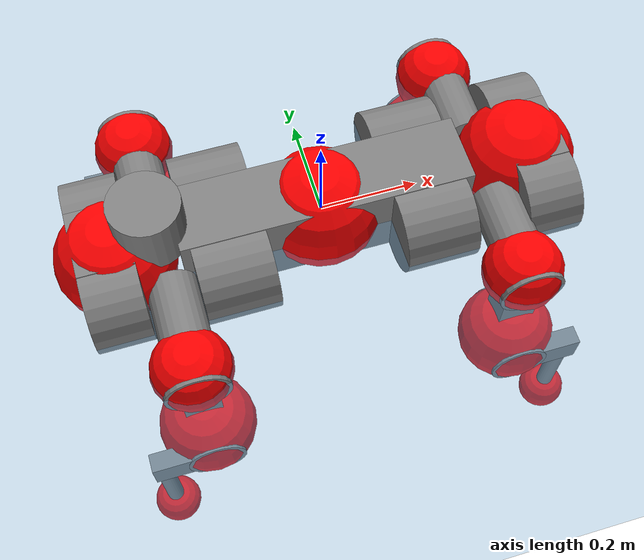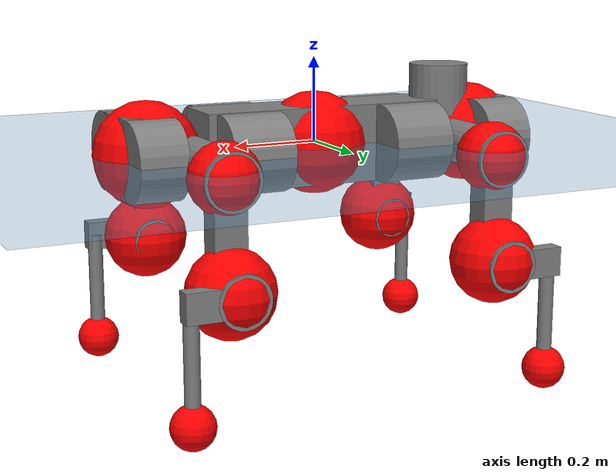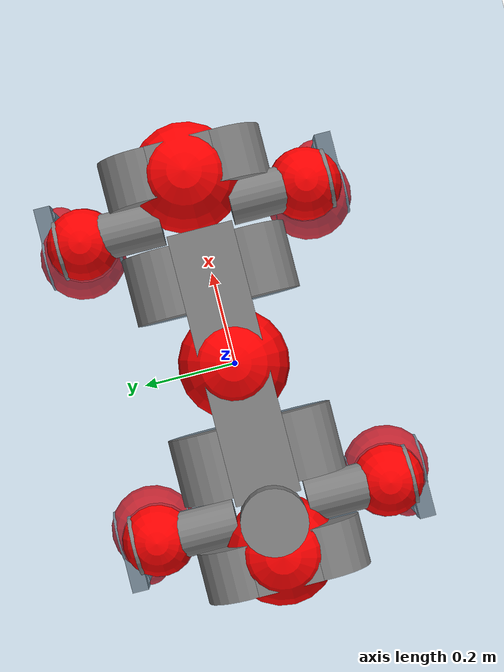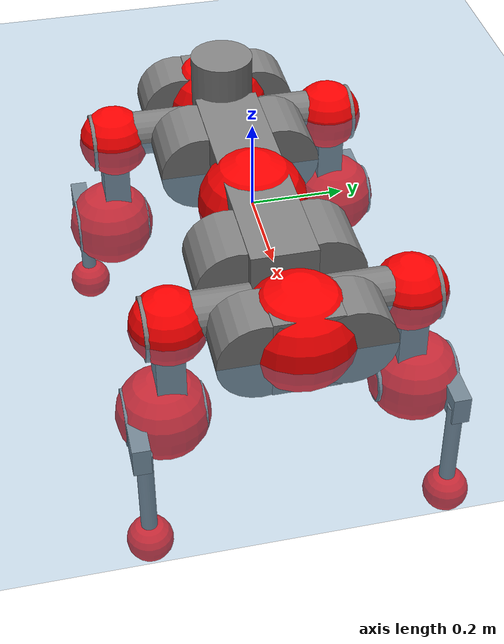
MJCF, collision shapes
<mujoco model="anymal_c">
  <compiler angle="radian" assetdir="assets" balanceinertia="true" inertiafromgeom="false"/>

  <option timestep="0.005" density="1.2" viscosity="2e-05"/>

  <size nkey="1"/>

  <visual>
    <quality shadowsize="8192"/>
    <map shadowclip="0.5"/>
  </visual>

  <default>
    <default class="/">
      <material specular="0" shininess="0.25"/>
      <geom contype="0" conaffinity="0" group="1" solref="-1000 -80"/>
      <site size="0.01 0.005 0.005" group="5"/>
      <general forcelimited="true" forcerange="-80 80" biastype="affine" gainprm="80" biasprm="0 -80 -2"/>
      <default class="anymal_c">
        <joint armature="0.01" damping="0.01" frictionloss="0.1"/>
        <default class="visual">
          <geom type="mesh" group="2"/>
          <default class="visual_zflip"/>
        </default>
        <default class="collision">
          <geom type="cylinder" group="3"/>
          <default class="foot">
            <geom size="0.03 0 0" type="sphere" condim="6" priority="1" friction="0.8 0.02 0.01" solimp="0.015 1 0.03"/>
          </default>
        </default>
      </default>
      <default class="reward_collision_sphere">
        <geom group="5" rgba="1 0 0 1"/>
      </default>
    </default>
  </default>

  <asset>
    <texture type="skybox" colorspace="auto" name="//unnamed_texture_0" builtin="gradient" rgb1="0.95 0.95 0.95" rgb2="0.95 0.95 0.95" width="100" height="600"/>
    <texture type="2d" colorspace="auto" name="texplane" builtin="checker" rgb1="0.345 0.575 0.748" rgb2="0.345 0.575 0.748" markrgb="1 1 1" width="512" height="512"/>
    <texture type="2d" colorspace="linear" name="base" file="base.png"/>
    <texture type="2d" colorspace="linear" name="top_shell" file="top_shell.png"/>
    <texture type="2d" colorspace="linear" name="bottom_shell" file="bottom_shell.png"/>
    <texture type="2d" colorspace="linear" name="remote" file="remote.png"/>
    <texture type="2d" colorspace="linear" name="hatch" file="hatch.png"/>
    <texture type="2d" colorspace="linear" name="handle" file="handle.png"/>
    <texture type="2d" colorspace="linear" name="face" file="face.png"/>
    <texture type="2d" colorspace="linear" name="battery" file="battery.png"/>
    <texture type="2d" colorspace="linear" name="lidar_cage" file="lidar_cage.png"/>
    <texture type="2d" colorspace="linear" name="depth_camera" file="depth_camera.png"/>
    <texture type="2d" colorspace="linear" name="wide_angle_camera" file="wide_angle_camera.png"/>
    <texture type="2d" colorspace="linear" name="lidar" file="lidar.png"/>
    <texture type="2d" colorspace="linear" name="drive" file="drive.png"/>
    <texture type="2d" colorspace="linear" name="hip_l" file="hip_l.png"/>
    <texture type="2d" colorspace="linear" name="shank_l" file="shank_l.png"/>
    <texture type="2d" colorspace="linear" name="foot" file="foot.png"/>
    <texture type="2d" colorspace="linear" name="thigh" file="thigh.png"/>
    <texture type="2d" colorspace="linear" name="shank_r" file="shank_r.png"/>
    <texture type="2d" colorspace="linear" name="hip_r" file="hip_r.png"/>
    <material name="MatPlane" class="/" texture="texplane" texuniform="true" texrepeat="2 2" specular="0.9" shininess="0.5"/>
    <material name="black_plastic" class="/" rgba="0.007 0.007 0.007 1"/>
    <material name="green" class="/" rgba="0.052 0.178 0.033 1"/>
    <material name="red" class="/" rgba="0.178 0.006 0.005 1"/>
    <material name="yellow" class="/" rgba="0.178 0.119 0.006 1"/>
    <material name="lwl" class="/" rgba="0.8 0.8 0.8 1"/>
    <material name="base" class="/" texture="base"/>
    <material name="top_shell" class="/" texture="top_shell"/>
    <material name="bottom_shell" class="/" texture="bottom_shell"/>
    <material name="hip_l" class="/" texture="hip_l"/>
    <material name="thigh" class="/" texture="thigh"/>
    <material name="shank_l" class="/" texture="shank_l"/>
    <material name="foot" class="/" texture="foot"/>
    <material name="hip_r" class="/" texture="hip_r"/>
    <material name="shank" class="/" texture="shank_r"/>
    <material name="hatch" class="/" texture="hatch"/>
    <material name="remote" class="/" texture="remote"/>
    <material name="handle" class="/" texture="handle"/>
    <material name="face" class="/" texture="face"/>
    <material name="depth_camera" class="/" texture="depth_camera"/>
    <material name="wide_angle_camera" class="/" texture="wide_angle_camera"/>
    <material name="battery" class="/" texture="battery"/>
    <material name="lidar_cage" class="/" texture="lidar_cage"/>
    <material name="lidar" class="/" texture="lidar"/>
    <material name="drive" class="/" texture="drive"/>
    <mesh name="base_0" class="/" file="base_0.obj"/>
    <mesh name="base_1" class="/" file="base_1.obj"/>
    <mesh name="base_2" class="/" file="base_2.obj"/>
    <mesh name="base_3" class="/" file="base_3.obj"/>
    <mesh name="base_4" class="/" file="base_4.obj"/>
    <mesh name="base_5" class="/" file="base_5.obj"/>
    <mesh name="top_shell" class="/" file="top_shell.obj"/>
    <mesh name="bottom_shell" class="/" file="bottom_shell.obj"/>
    <mesh name="remote" class="/" file="remote.obj"/>
    <mesh name="handle" class="/" file="handle.obj"/>
    <mesh name="face" class="/" file="face.obj"/>
    <mesh name="wide_angle_camera" class="/" file="wide_angle_camera.obj"/>
    <mesh name="depth_camera" class="/" file="depth_camera.obj"/>
    <mesh name="battery" class="/" file="battery.obj"/>
    <mesh name="lidar_cage" class="/" file="lidar_cage.obj"/>
    <mesh name="lidar" class="/" file="lidar.obj"/>
    <mesh name="drive" class="/" file="drive.obj"/>
    <mesh name="hip_l" class="/" file="hip_l.obj"/>
    <mesh name="thigh" class="/" file="thigh.obj"/>
    <mesh name="shank_l" class="/" file="shank_l.obj"/>
    <mesh name="foot" class="/" file="foot.obj"/>
    <mesh name="hip_r" class="/" file="hip_r.obj"/>
    <mesh name="hatch" class="/" file="hatch.obj"/>
    <mesh name="shank_r" class="/" file="shank_r.obj"/>
  </asset>

  <worldbody>
    <geom name="floor" class="/" size="100 100 0.125" type="plane" group="0" material="MatPlane"/>
    <light name="toplight_shadow" class="/" pos="0 0 5" dir="0.0990148 0.0990148 -0.990148" type="directional" ambient="0.04 0.04 0.04" diffuse="0.55 0.55 0.55" specular="0.12 0.12 0.12"/>
    <light name="toplight_fill" class="/" pos="0 0 5" dir="0.0990148 0.0990148 -0.990148" type="directional" castshadow="false" ambient="0.04 0.04 0.04" diffuse="0.3 0.3 0.3" specular="0.08 0.08 0.08"/>
    <body name="trunk" childclass="anymal_c" pos="-0.000625703 0.00239494 -0.00123368" quat="0.999999 -0.00052812 -0.000694738 0.000859973">
      <inertial pos="0.00341585 0.00704869 0.0369337" quat="0.50067 0.504351 0.495926 0.499016" mass="20.6452" diaginertia="0.508437 2.21891 0.0894591"/>
      <joint name="//unnamed_joint_0" type="free" armature="0" damping="0" frictionloss="0"/>
      <geom name="//unnamed_geom_1" class="visual" material="green" mesh="base_0"/>
      <geom name="//unnamed_geom_2" class="visual" material="yellow" mesh="base_1"/>
      <geom name="//unnamed_geom_3" class="visual" material="red" mesh="base_2"/>
      <geom name="//unnamed_geom_4" class="visual" material="black_plastic" mesh="base_3"/>
      <geom name="//unnamed_geom_5" class="visual" material="lwl" mesh="base_4"/>
      <geom name="//unnamed_geom_6" class="visual" material="base" mesh="base_5"/>
      <geom name="trunk_1" class="collision" size="0.293385 0.0708172 0.0910506" type="box"/>
      <geom name="trunk_2" class="collision" size="0.0910506 0.0733463" pos="0.200906 0.0895144 0" quat="0.707107 0 0.707107 0"/>
      <geom name="trunk_3" class="collision" size="0.0910506 0.0733463" pos="-0.200906 0.0895144 0" quat="0.707107 0 0.707107 0"/>
      <geom name="trunk_4" class="collision" size="0.0910506 0.0733463" pos="0.200906 -0.0895144 0" quat="0.707107 0 0.707107 0"/>
      <geom name="trunk_5" class="collision" size="0.0910506 0.0733463" pos="-0.200906 -0.0895144 0" quat="0.707107 0 0.707107 0"/>
      <geom name="//unnamed_geom_12" class="visual" material="top_shell" mesh="top_shell"/>
      <geom name="//unnamed_geom_13" class="visual" material="bottom_shell" mesh="bottom_shell"/>
      <geom name="//unnamed_geom_14" class="visual" material="remote" mesh="remote"/>
      <geom name="//unnamed_geom_15" class="visual" material="handle" mesh="handle"/>
      <geom name="//unnamed_geom_16" class="visual" pos="0.382876 0 0" quat="1 0 0 0" material="face" mesh="face"/>
      <geom name="trunk_6" class="collision" size="0.0556421 0.0708172 0.0910506" pos="0.43368 0 0" type="box"/>
      <geom name="//unnamed_geom_18" class="collision" size="0.0910506 0.0556421" pos="0.43368 0.0895144 0" quat="0.707107 0 0.707107 0"/>
      <geom name="//unnamed_geom_19" class="collision" size="0.0910506 0.0556421" pos="0.43368 -0.0895144 0" quat="0.707107 0 0.707107 0"/>
      <geom name="//unnamed_geom_20" class="visual" pos="0.426425 0 -0.0236172" quat="0.965926 0 0.258819 0" material="depth_camera" mesh="depth_camera"/>
      <geom name="//unnamed_geom_21" class="visual" pos="0.473861 0 0.0124631" material="wide_angle_camera" mesh="wide_angle_camera"/>
      <geom name="//unnamed_geom_22" class="visual_zflip" pos="-0.382876 0 0" quat="0 0 0 1" material="face" mesh="face"/>
      <geom name="trunk_7" class="collision" size="0.0556421 0.0708172 0.0910506" pos="-0.43368 0 0" quat="0 0 0 1" type="box"/>
      <geom name="//unnamed_geom_24" class="collision" size="0.0910506 0.0556421" pos="-0.43368 -0.0895144 0" quat="0 -0.707107 0 0.707107"/>
      <geom name="//unnamed_geom_25" class="collision" size="0.0910506 0.0556421" pos="-0.43368 0.0895144 0" quat="0 -0.707107 0 0.707107"/>
      <geom name="//unnamed_geom_26" class="visual" pos="-0.426425 0 -0.0236172" quat="0 -0.258819 0 0.965926" material="depth_camera" mesh="depth_camera"/>
      <geom name="//unnamed_geom_27" class="visual_zflip" pos="-0.473861 0 0.0124631" quat="0 0 0 1" material="wide_angle_camera" mesh="wide_angle_camera"/>
      <geom name="//unnamed_geom_28" class="visual" material="battery" mesh="battery"/>
      <geom name="//unnamed_geom_29" class="visual" pos="0 0.102431 0.0248781" quat="0.683013 -0.183013 0.183013 0.683013" material="depth_camera" mesh="depth_camera"/>
      <geom name="//unnamed_geom_30" class="visual" pos="0 -0.102431 0.0248781" quat="0.683013 0.183013 0.183013 -0.683013" material="depth_camera" mesh="depth_camera"/>
      <geom name="//unnamed_geom_31" class="visual" pos="-0.336229 0 0.0611916" quat="1 0 0 0" material="lidar_cage" mesh="lidar_cage"/>
      <geom name="trunk_8" class="collision" size="0.0708172 0.0607004" pos="-0.336229 0 0.111144"/>
      <geom name="//unnamed_geom_33" class="visual" pos="-0.336229 0.000139498 0.118387" quat="0.707107 0 0 -0.707107" material="lidar" mesh="lidar"/>
      <geom name="//unnamed_geom_34" class="visual" pos="0.277019 0.132834 7.69768e-09" quat="0.258819 0.965926 0 0" material="drive" mesh="drive"/>
      <geom name="//unnamed_geom_35" class="visual" pos="0.277019 -0.132834 -7.69768e-09" quat="0.258819 -0.965926 0 0" material="drive" mesh="drive"/>
      <geom name="//unnamed_geom_36" class="visual" pos="-0.277019 0.132834 -7.69768e-09" quat="0 0 0.965926 -0.258819" material="drive" mesh="drive"/>
      <geom name="//unnamed_geom_37" class="visual" pos="-0.277019 -0.132834 7.69768e-09" quat="0 0 -0.965926 -0.258819" material="drive" mesh="drive"/>
      <geom name="//unnamed_geom_38" class="visual" pos="0.10715 0 0.0607753" quat="1 0 0 0" material="hatch" mesh="hatch"/>
      <geom name="//unnamed_geom_39" class="reward_collision_sphere" size="0.121401"/>
      <geom name="//unnamed_geom_40" class="reward_collision_sphere" size="0.121401" pos="0.415667 0 0"/>
      <geom name="//unnamed_geom_41" class="reward_collision_sphere" size="0.121401" pos="-0.415667 0 0"/>
      <site name="imu" pos="0.218861 0.0196925 0.0474795" size="0.0101167"/>
      <camera name="track" pos="0 -2.55755 0" quat="0.707107 0.707107 0 0" mode="trackcom"/>
      <camera name="ego_camera" pos="0.415667 0 -0.0333015" quat="-0.5 -0.5 0.5 0.5"/>
      <body name="LF_HIP" pos="0.279888 0.132196 -0.000836084" quat="0.257742 0.966214 -3.10989e-06 6.8192e-05">
        <inertial pos="0.05277 -0.0151238 -0.00682799" quat="-0.14645 0.682798 -0.129122 0.704036" mass="2.99069" diaginertia="0.00394136 0.0172922 0.00132162"/>
        <joint name="LF_HAA" pos="0 0 0" axis="0.999984 -0.00393235 0.0041552" range="-0.702106 0.441681" armature="0.00959583" damping="0.0191879" frictionloss="0.100111"/>
        <geom name="//unnamed_geom_42" class="visual" pos="0 0.000452819 -7.43752e-05" quat="0.258819 -0.965926 0 0" material="hip_l" mesh="hip_l"/>
        <geom name="//unnamed_geom_43" class="visual" pos="0.0553299 -0.0715606 -0.0380149" quat="0.183013 -0.683013 0.683013 0.183013" material="drive" mesh="drive"/>
        <geom name="//unnamed_geom_44" class="collision" size="0.0505837 0.0708172" pos="0.05533 -0.0152939 -0.00574868" quat="-0.353553 -0.612372 0.612372 -0.353553"/>
        <body name="LF_THIGH" pos="0.0511301 -0.0939016 -0.0327893" quat="0.184405 -0.683608 0.681255 0.18592">
          <inertial pos="0.0282365 -0.0074379 -0.206766" quat="0.993138 -0.00407518 -0.0819966 0.0832853" mass="3.14831" diaginertia="0.0217086 0.0935158 0.00167447"/>
          <joint name="LF_HFE" pos="0 0 0" axis="0.999913 0.00410672 0.0125227" range="-3.08907 3.26149" armature="0.00658938" damping="0.0233985" frictionloss="0.107204"/>
          <geom name="//unnamed_geom_45" class="visual" pos="-0.00706453 -1.11321e-05 0" quat="0.707107 0 0 -0.707107" material="thigh" mesh="thigh"/>
          <geom name="//unnamed_geom_46" class="collision" size="0.0657588 0.0404669" pos="0.0369482 0 0" quat="0.5 0.5 -0.5 -0.5"/>
          <geom name="//unnamed_geom_47" class="collision" size="0.0379378 0.0303502 0.142964" pos="0.0277112 0 -0.117649" quat="0.707107 0 0 -0.707107" type="box"/>
          <geom name="//unnamed_geom_48" class="visual" pos="0.0926477 0 -0.237273" quat="1 0 0 0" material="drive" mesh="drive"/>
          <geom name="//unnamed_geom_49" class="collision" size="0.0505837 0.0708172" pos="0.0279883 0 -0.237273" quat="0.707107 0 0.707107 0"/>
          <geom name="//unnamed_geom_50" class="reward_collision_sphere" size="0.0809339" pos="0.0230926 0 0"/>
          <body name="LF_SHANK" pos="0.0942329 0.000841221 -0.242496" quat="0.999999 0.000514367 -0.000887073 0.000767173">
            <inertial pos="0.0103791 -0.0763665 -0.0630871" quat="0.99257 -0.118853 -0.00360571 -0.0258009" mass="0.631555" diaginertia="0.00695125 0.0299243 0.000446117"/>
            <joint name="LF_KFE" pos="0 0 0" axis="0.999956 -0.00434463 0.00834381" range="-3.29104 3.06148" armature="0.0107378" damping="0.0305265" frictionloss="0.106557"/>
            <geom name="//unnamed_geom_51" class="visual" pos="-0.00230359 -0.0122829 0" quat="0.707107 0 0 -0.707107" material="shank_l" mesh="shank_l"/>
            <geom name="LF_kfe_act" class="collision" size="0.0607004 0.0202335" pos="0.0184741 0 0" quat="0.5 0.5 -0.5 -0.5"/>
            <geom name="//unnamed_geom_53" class="collision" size="0.0581702 0.034144 0.0192218" pos="0.0184741 -0.0735284 0" quat="0.5 0.5 -0.5 -0.5" type="box"/>
            <geom name="//unnamed_geom_54" class="visual" pos="0.0120549 -0.116427 -0.281373" quat="0.382683 0 0 -0.92388" material="foot" mesh="foot"/>
            <geom name="LF_calf" class="collision" size="0.0177043 0.142901" pos="0.0120544 -0.112468 -0.140686" quat="0.707107 0 0 -0.707107"/>
            <geom name="LF_foot" class="foot" size="0.0332987" pos="0.0120544 -0.112468 -0.262641" quat="0.707107 0 0 -0.707107"/>
            <geom name="//unnamed_geom_57" class="reward_collision_sphere" size="0.101167" pos="-0.0461853 0 0"/>
            <geom name="//unnamed_geom_58" class="reward_collision_sphere" size="0.0505837" pos="0.0120544 -0.112468 -0.262641"/>
            <site name="LF_foot" class="foot" pos="0.0120544 -0.112468 -0.262641" quat="0.707107 0 0 -0.707107" size="0.0101167"/>
          </body>
        </body>
      </body>
      <body name="RF_HIP" pos="0.284402 -0.132417 0.0106984" quat="0.258418 -0.966033 0.000807545 -0.000258258">
        <inertial pos="0.0502416 0.0202734 -0.00684075" quat="0.144237 0.695214 0.112996 0.695057" mass="2.885" diaginertia="0.00411909 0.0167868 0.00134294"/>
        <joint name="RF_HAA" pos="0 0 0" axis="0.999984 0.00331701 0.00449564" stiffness="0.0382277" range="-0.453044 0.62357" armature="0.0101149" damping="0.0265136" frictionloss="0.108611"/>
        <geom name="//unnamed_geom_59" class="visual" pos="0 -0.000452816 -7.4375e-05" quat="0.258819 0.965926 0 0" material="hip_r" mesh="hip_r"/>
        <geom name="//unnamed_geom_60" class="visual" pos="0.05533 0.0715606 -0.0380149" quat="0.183013 0.683013 0.683013 -0.183013" material="drive" mesh="drive"/>
        <geom name="//unnamed_geom_61" class="collision" size="0.0505837 0.0708172" pos="0.05533 0.0152939 -0.00574868" quat="-0.353553 0.612372 0.612372 0.353553"/>
        <body name="RF_THIGH" pos="0.0551133 0.0871264 -0.02935" quat="0.182886 0.682918 0.683403 -0.182033">
          <inertial pos="0.027866 0.00211153 -0.210551" quat="0.992555 -0.00472759 -0.0791845 0.0924277" mass="3.26449" diaginertia="0.0211421 0.103372 0.00169187"/>
          <joint name="RF_HFE" pos="0 0 0" axis="0.9999 0.0121418 -0.00721329" range="-3.16459 3.15701" armature="0.0126358" damping="0" frictionloss="0.110548"/>
          <geom name="//unnamed_geom_62" class="visual" pos="-0.00706453 -1.11321e-05 0" quat="0.707107 0 0 -0.707107" material="thigh" mesh="thigh"/>
          <geom name="//unnamed_geom_63" class="collision" size="0.0657588 0.0404669" pos="0.0369482 0 0" quat="0.5 0.5 0.5 0.5"/>
          <geom name="//unnamed_geom_64" class="collision" size="0.0379378 0.0303502 0.142964" pos="0.0277112 0 -0.117649" quat="0.707107 0 0 0.707107" type="box"/>
          <geom name="//unnamed_geom_65" class="visual" pos="0.0926477 0 -0.237273" quat="1 0 0 0" material="drive" mesh="drive"/>
          <geom name="//unnamed_geom_66" class="collision" size="0.0505837 0.0708172" pos="0.0279883 0 -0.237273" quat="0.707107 0 0.707107 0"/>
          <geom name="//unnamed_geom_67" class="reward_collision_sphere" size="0.0809339" pos="0.0230926 0 0"/>
          <body name="RF_SHANK" pos="0.0895639 -0.00340722 -0.242973" quat="1 0.000285047 -0.000871438 -0.000226936">
            <inertial pos="0.00695216 0.076075 -0.0653514" quat="0.992887 0.116388 -0.00178614 0.0250204" mass="0.553621" diaginertia="0.00616608 0.027661 0.000414963"/>
            <joint name="RF_KFE" pos="0 0 0" axis="0.999971 0.00469613 0.00607525" range="-3.11717 3.16974" armature="0.00907231" damping="0.0390965" frictionloss="0.0975869"/>
            <geom name="//unnamed_geom_68" class="visual" pos="-0.00230358 0.0122828 0" quat="0.707107 0 0 0.707107" material="shank" mesh="shank_r"/>
            <geom name="RF_kfe_act" class="collision" size="0.0607004 0.0202335" pos="0.0184741 0 0" quat="0.5 0.5 0.5 0.5"/>
            <geom name="//unnamed_geom_70" class="collision" size="0.0581702 0.034144 0.0192218" pos="0.0184741 0.0735284 0" quat="0.5 0.5 0.5 0.5" type="box"/>
            <geom name="//unnamed_geom_71" class="visual" pos="0.0120538 0.116427 -0.281373" quat="0.382683 0 0 0.92388" material="foot" mesh="foot"/>
            <geom name="RF_calf" class="collision" size="0.0177043 0.142901" pos="0.0120544 0.112468 -0.140686" quat="0.707107 0 0 0.707107"/>
            <geom name="RF_foot" class="foot" size="0.0387208" pos="0.0120544 0.112468 -0.262641" quat="0.707107 0 0 0.707107"/>
            <geom name="//unnamed_geom_74" class="reward_collision_sphere" size="0.101167" pos="-0.0461853 0 0"/>
            <geom name="//unnamed_geom_75" class="reward_collision_sphere" size="0.0505837" pos="0.0120544 0.112468 -0.262641"/>
            <site name="RF_foot" class="foot" pos="0.0120544 0.112468 -0.262641" quat="0.707107 0 0 0.707107" size="0.0101167"/>
          </body>
        </body>
      </body>
      <body name="LH_HIP" pos="-0.276559 0.132586 -0.00299521" quat="-0.000303521 0.00129509 0.966003 -0.258527">
        <inertial pos="0.0545377 0.0173368 -0.00870096" quat="0.130465 0.684876 0.130074 0.704986" mass="3.137" diaginertia="0.00381386 0.0168427 0.00128694"/>
        <joint name="LH_HAA" pos="0 0 0" axis="1 -0.000597298 -0.000341271" range="-0.584204 0.70438" armature="0.0091551" damping="0" frictionloss="0.0828862"/>
        <geom name="//unnamed_geom_76" class="visual" pos="0 -0.000452816 -7.4375e-05" quat="-0.258819 -0.965926 0 0" material="hip_r" mesh="hip_r"/>
        <geom name="//unnamed_geom_77" class="visual" pos="0.05533 0.0715606 -0.0380149" quat="0.183013 0.683013 0.683013 -0.183013" material="drive" mesh="drive"/>
        <geom name="//unnamed_geom_78" class="collision" size="0.0505837 0.0708172" pos="0.05533 0.0152939 -0.00574868" quat="-0.353553 0.612372 0.612372 0.353553"/>
        <body name="LH_THIGH" pos="0.0546697 0.0931249 -0.0347557" quat="0.180343 0.683771 0.682622 -0.184288">
          <inertial pos="0.0300108 -0.00815708 -0.203535" quat="0.993649 -0.0175683 -0.0680609 0.0878728" mass="3.47823" diaginertia="0.0207497 0.101194 0.00157248"/>
          <joint name="LH_HFE" pos="0 0 0" axis="0.999281 0.00443854 0.0376624" range="-3.1895 3.10672" armature="0.00899753" damping="0" frictionloss="0.107362"/>
          <geom name="//unnamed_geom_79" class="visual" pos="-0.00706453 -1.11321e-05 0" quat="0.707107 0 0 -0.707107" material="thigh" mesh="thigh"/>
          <geom name="//unnamed_geom_80" class="collision" size="0.0657588 0.0404669" pos="0.0369482 0 0" quat="0.5 0.5 -0.5 -0.5"/>
          <geom name="//unnamed_geom_81" class="collision" size="0.0379378 0.0303502 0.142964" pos="0.0277112 0 -0.117649" quat="0.707107 0 0 -0.707107" type="box"/>
          <geom name="//unnamed_geom_82" class="visual" pos="0.0926477 0 -0.237273" quat="1 0 0 0" material="drive" mesh="drive"/>
          <geom name="//unnamed_geom_83" class="collision" size="0.0505837 0.0708172" pos="0.0279883 0 -0.237273" quat="0.707107 0 0.707107 0"/>
          <geom name="//unnamed_geom_84" class="reward_collision_sphere" size="0.0809339" pos="0.0230926 0 0"/>
          <body name="LH_SHANK" pos="0.0929084 -0.00366365 -0.239934" quat="1 0.000102001 0.000272599 -0.000390576">
            <inertial pos="0.00510672 0.0739055 -0.0694121" quat="0.992783 0.117667 -0.00942186 0.0211655" mass="0.616032" diaginertia="0.00728238 0.0337508 0.000481492"/>
            <joint name="LH_KFE" pos="0 0 0" axis="0.999988 0.00255377 -0.00425486" range="-3.28253 3.13181" armature="0.00632219" damping="0" frictionloss="0.111764"/>
            <geom name="//unnamed_geom_85" class="visual" pos="-0.00230358 0.0122828 0" quat="-0.707107 0 0 -0.707107" material="shank" mesh="shank_r"/>
            <geom name="LH_kfe_act" class="collision" size="0.0607004 0.0202335" pos="0.0184741 0 0" quat="0.5 0.5 -0.5 -0.5"/>
            <geom name="//unnamed_geom_87" class="collision" size="0.0581702 0.034144 0.0192218" pos="0.0184741 0.0735284 0" quat="0.5 0.5 -0.5 -0.5" type="box"/>
            <geom name="//unnamed_geom_88" class="visual" pos="0.0120538 0.116427 -0.281373" quat="-0.382683 0 0 -0.92388" material="foot" mesh="foot"/>
            <geom name="LH_calf" class="collision" size="0.0177043 0.142901" pos="0.0120544 0.112468 -0.140686" quat="0.707107 0 0 -0.707107"/>
            <geom name="LH_foot" class="foot" size="0.035258" pos="0.0120544 0.112468 -0.262641" quat="0.707107 0 0 -0.707107"/>
            <geom name="//unnamed_geom_91" class="reward_collision_sphere" size="0.101167" pos="-0.0461853 0 0"/>
            <geom name="//unnamed_geom_92" class="reward_collision_sphere" size="0.0505837" pos="0.0120544 0.112468 -0.262641"/>
            <site name="LH_foot" class="foot" pos="0.0120544 0.112468 -0.262641" quat="0.707107 0 0 -0.707107" size="0.0101167"/>
          </body>
        </body>
      </body>
      <body name="RH_HIP" pos="-0.269891 -0.135398 -0.000143671" quat="-0.00327072 0.00099243 -0.966453 -0.256821">
        <inertial pos="0.0540825 -0.0208692 -0.00959237" quat="-0.128883 0.70978 -0.136321 0.678983" mass="2.92365" diaginertia="0.00397383 0.0172134 0.00119103"/>
        <joint name="RH_HAA" pos="0 0 0" axis="0.99992 0.0112352 0.00573965" range="-0.764895 0.439604" armature="0.00712845" damping="0.0124163" frictionloss="0.0922083"/>
        <geom name="//unnamed_geom_93" class="visual" pos="0 0.000452819 -7.43752e-05" quat="-0.258819 0.965926 0 0" material="hip_l" mesh="hip_l"/>
        <geom name="//unnamed_geom_94" class="visual" pos="0.0553299 -0.0715606 -0.0380149" quat="-0.183013 0.683013 -0.683013 -0.183013" material="drive" mesh="drive"/>
        <geom name="//unnamed_geom_95" class="collision" size="0.0505837 0.0708172" pos="0.05533 -0.0152939 -0.00574868" quat="0.353553 0.612372 -0.612372 0.353553"/>
        <body name="RH_THIGH" pos="0.0579087 -0.0968322 -0.0356169" quat="-0.183193 0.682952 -0.682997 -0.183118">
          <inertial pos="0.0286961 0.00342438 -0.206271" quat="0.993715 -0.0103464 -0.0708394 0.0860546" mass="3.30791" diaginertia="0.0202418 0.102812 0.00176119"/>
          <joint name="RH_HFE" pos="0 0 0" axis="0.999997 0.00208934 0.00145981" range="-3.10113 2.98675" armature="0.0136848" damping="0" frictionloss="0.0912054"/>
          <geom name="//unnamed_geom_96" class="visual" pos="-0.00706453 -1.11321e-05 0" quat="0.707107 0 0 -0.707107" material="thigh" mesh="thigh"/>
          <geom name="//unnamed_geom_97" class="collision" size="0.0657588 0.0404669" pos="0.0369482 0 0" quat="0.5 0.5 0.5 0.5"/>
          <geom name="//unnamed_geom_98" class="collision" size="0.0379378 0.0303502 0.142964" pos="0.0277112 0 -0.117649" quat="0.707107 0 0 0.707107" type="box"/>
          <geom name="//unnamed_geom_99" class="visual" pos="0.0926477 0 -0.237273" quat="1 0 0 0" material="drive" mesh="drive"/>
          <geom name="//unnamed_geom_100" class="collision" size="0.0505837 0.0708172" pos="0.0279883 0 -0.237273" quat="0.707107 0 0.707107 0"/>
          <geom name="//unnamed_geom_101" class="reward_collision_sphere" size="0.0809339" pos="0.0230926 0 0"/>
          <body name="RH_SHANK" pos="0.0914226 -0.000329144 -0.237695" quat="1 0.000389372 -0.000592509 0.000401239">
            <inertial pos="0.00640865 -0.0756102 -0.0669035" quat="0.992777 -0.117817 -0.00138213 -0.022612" mass="0.585745" diaginertia="0.00689431 0.0311097 0.000431571"/>
            <joint name="RH_KFE" pos="0 0 0" axis="0.99985 0.0087918 -0.0149148" stiffness="0.00573339" range="-3.24507 3.12849" armature="0.00932615" damping="0" frictionloss="0.0955222"/>
            <geom name="//unnamed_geom_102" class="visual" pos="-0.00230359 -0.0122829 0" quat="0.707107 0 0 -0.707107" material="shank_l" mesh="shank_l"/>
            <geom name="RH_kfe_act" class="collision" size="0.0607004 0.0202335" pos="0.0184741 0 0" quat="0.5 0.5 0.5 0.5"/>
            <geom name="//unnamed_geom_104" class="collision" size="0.0581702 0.034144 0.0192218" pos="0.0184741 -0.0735284 0" quat="0.5 0.5 0.5 0.5" type="box"/>
            <geom name="//unnamed_geom_105" class="visual" pos="0.0120549 -0.116427 -0.281373" quat="0.382683 0 0 -0.92388" material="foot" mesh="foot"/>
            <geom name="RH_calf" class="collision" size="0.0177043 0.142901" pos="0.0120544 -0.112468 -0.140686" quat="0.707107 0 0 0.707107"/>
            <geom name="RH_foot" class="foot" size="0.0213233" pos="0.0120544 -0.112468 -0.262641" quat="0.707107 0 0 0.707107"/>
            <geom name="//unnamed_geom_108" class="reward_collision_sphere" size="0.101167" pos="-0.0461853 0 0"/>
            <geom name="//unnamed_geom_109" class="reward_collision_sphere" size="0.0505837" pos="0.0120544 -0.112468 -0.262641"/>
            <site name="RH_foot" class="foot" pos="0.0120544 -0.112468 -0.262641" quat="0.707107 0 0 0.707107" size="0.0101167"/>
          </body>
        </body>
      </body>
    </body>
  </worldbody>

  <contact>
    <pair class="/" geom1="floor" geom2="LF_foot" name="//unnamed_contact_0"/>
    <pair class="/" geom1="floor" geom2="RF_foot" name="//unnamed_contact_1"/>
    <pair class="/" geom1="floor" geom2="LH_foot" name="//unnamed_contact_2"/>
    <pair class="/" geom1="floor" geom2="RH_foot" name="//unnamed_contact_3"/>
  </contact>

  <actuator>
    <general name="LF_HAA" class="/" joint="LF_HAA" forcerange="-80.3398 80.3398" gainprm="80.7174" biasprm="0 -80.7174 -2.27643"/>
    <general name="LF_HFE" class="/" joint="LF_HFE" forcerange="-79.8244 79.8244" gainprm="80.7174" biasprm="0 -80.7174 -2.27643"/>
    <general name="LF_KFE" class="/" joint="LF_KFE" forcerange="-88.039 88.039" gainprm="80.7174" biasprm="0 -80.7174 -2.27643"/>
    <general name="RF_HAA" class="/" joint="RF_HAA" forcerange="-83.0494 83.0494" gainprm="80.7174" biasprm="0 -80.7174 -2.27643"/>
    <general name="RF_HFE" class="/" joint="RF_HFE" forcerange="-84.0839 84.0839" gainprm="80.7174" biasprm="0 -80.7174 -2.27643"/>
    <general name="RF_KFE" class="/" joint="RF_KFE" forcerange="-90.6521 90.6521" gainprm="80.7174" biasprm="0 -80.7174 -2.27643"/>
    <general name="LH_HAA" class="/" joint="LH_HAA" forcerange="-78.09 78.09" gainprm="80.7174" biasprm="0 -80.7174 -2.27643"/>
    <general name="LH_HFE" class="/" joint="LH_HFE" forcerange="-82.301 82.301" gainprm="80.7174" biasprm="0 -80.7174 -2.27643"/>
    <general name="LH_KFE" class="/" joint="LH_KFE" forcerange="-86.3088 86.3088" gainprm="80.7174" biasprm="0 -80.7174 -2.27643"/>
    <general name="RH_HAA" class="/" joint="RH_HAA" forcerange="-82.3837 82.3837" gainprm="80.7174" biasprm="0 -80.7174 -2.27643"/>
    <general name="RH_HFE" class="/" joint="RH_HFE" forcerange="-83.2669 83.2669" gainprm="80.7174" biasprm="0 -80.7174 -2.27643"/>
    <general name="RH_KFE" class="/" joint="RH_KFE" forcerange="-64.1863 64.1863" gainprm="80.7174" biasprm="0 -80.7174 -2.27643"/>
  </actuator>

  <sensor>
    <gyro site="imu" name="imu_angular_velocity"/>
    <velocimeter site="imu" name="imu_linear_velocity"/>
    <framelinvel objtype="site" objname="LF_foot" name="LF_foot_global_linear_velocity"/>
    <framelinvel objtype="site" objname="RF_foot" name="RF_foot_global_linear_velocity"/>
    <framelinvel objtype="site" objname="LH_foot" name="LH_foot_global_linear_velocity"/>
    <framelinvel objtype="site" objname="RH_foot" name="RH_foot_global_linear_velocity"/>
  </sensor>

  <keyframe>
    <key name="home" qpos="0 0 0.55 1 0 0 0 0 0.4 -0.8 0 -0.4 0.8 0 -0.4 0.8 0 0.4 -0.8"/>
  </keyframe>
</mujoco>
